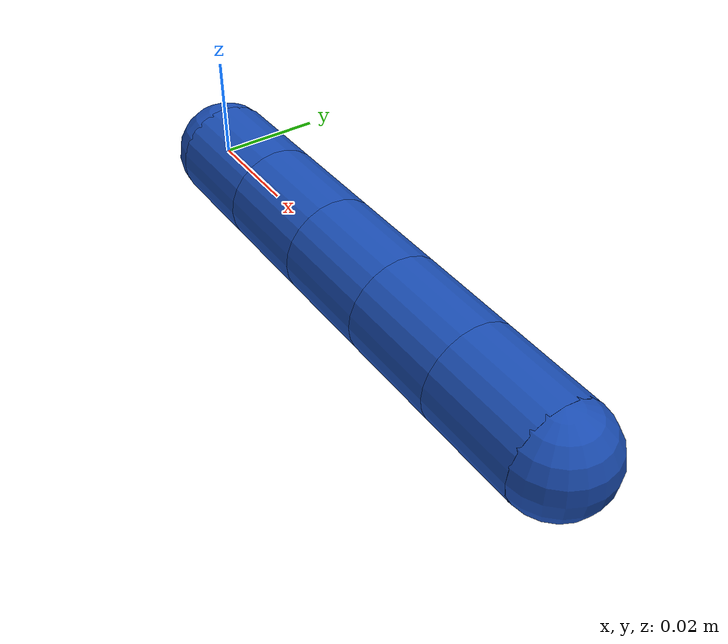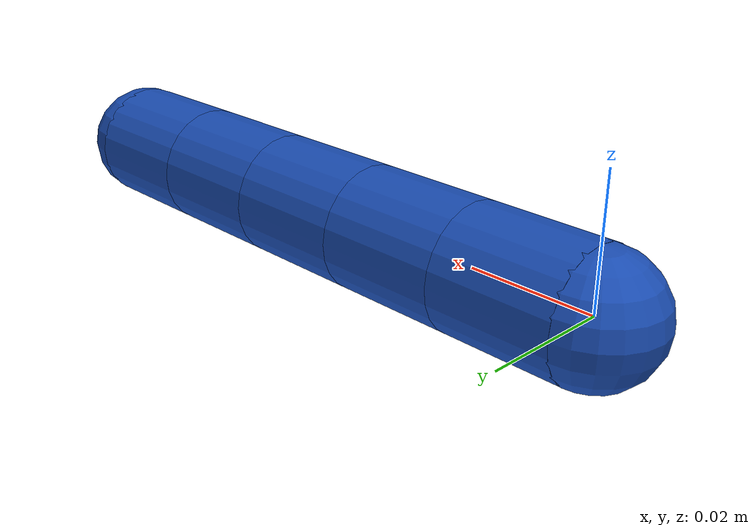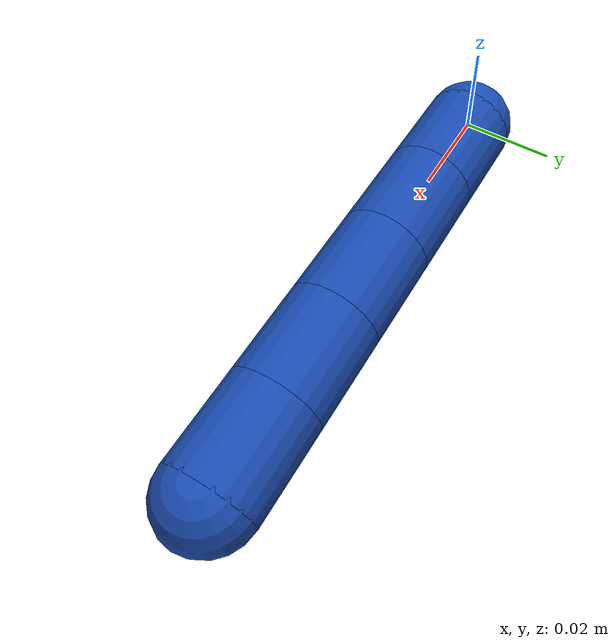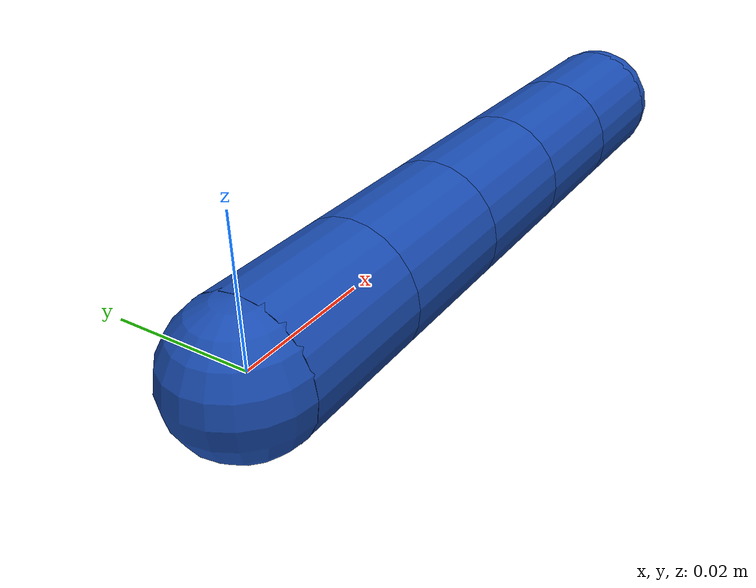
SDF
<?xml version="1.0" ?>
<sdf version="1.6">
  <world name="world">
    <model name="submarine">
      <pose>0 0 0 0 0 0</pose>

      <link name="link_body_0">
        <pose>0.00 0.0 0.0 0 0 0</pose>
        <inertial>
          <!-- CoM at geometric centre of segment -->
          <pose>0.01 0.0 0.0 0.0 0.0 0.0</pose>
          <mass>6.2832e-3</mass>
          <inertia>
            <ixx>3.14159e-7</ixx>
            <ixy>0</ixy>
            <ixz>0</ixz>
            <iyy>3.6652e-7</iyy>
            <iyz>0</iyz>
            <izz>3.6652e-7</izz>
          </inertia>
        </inertial>
        <collision name="link_body_0_collision">
          <!-- cylinder centred at (0.01, 0, 0), axis along x -->
          <pose>0.01 0.0 0.0 0 1.5707963 0</pose>
          <geometry>
            <cylinder>
              <radius>0.01</radius>
              <length>0.02</length>
            </cylinder>
          </geometry>
        </collision>
        <visual name="link_body_0_visual">
          <pose>0.01 0.0 0.0 0 1.5707963 0</pose>
          <geometry>
            <cylinder>
              <radius>0.01</radius>
              <length>0.02</length>
            </cylinder>
          </geometry>
          <material>
            <ambient>0.1 0.3 0.7 1.0</ambient>
            <diffuse>0.1 0.3 0.7 1.0</diffuse>
            <specular>0.5 0.5 0.8 1.0</specular>
            <emissive>0.0 0.0 0.0 1.0</emissive>
          </material>
        </visual>
        <!-- Hemispherical nose cap at x=0 -->
        <visual name="link_body_0_nose_visual">
          <pose>0.0 0.0 0.0 0 0 0</pose>
          <geometry>
            <sphere>
              <radius>0.01</radius>
            </sphere>
          </geometry>
          <material>
            <ambient>0.1 0.3 0.7 1.0</ambient>
            <diffuse>0.1 0.3 0.7 1.0</diffuse>
            <specular>0.5 0.5 0.8 1.0</specular>
            <emissive>0.0 0.0 0.0 1.0</emissive>
          </material>
        </visual>
      </link>

      <link name="link_body_1">
        <pose>0.02 0.0 0.0 0 0 0</pose>
        <inertial>
          <pose>0.01 0.0 0.0 0.0 0.0 0.0</pose>
          <mass>6.2832e-3</mass>
          <inertia>
            <ixx>3.14159e-7</ixx>
            <ixy>0</ixy>
            <ixz>0</ixz>
            <iyy>3.6652e-7</iyy>
            <iyz>0</iyz>
            <izz>3.6652e-7</izz>
          </inertia>
        </inertial>
        <collision name="link_body_1_collision">
          <pose>0.01 0.0 0.0 0 1.5707963 0</pose>
          <geometry>
            <cylinder>
              <radius>0.01</radius>
              <length>0.02</length>
            </cylinder>
          </geometry>
        </collision>
        <visual name="link_body_1_visual">
          <pose>0.01 0.0 0.0 0 1.5707963 0</pose>
          <geometry>
            <cylinder>
              <radius>0.01</radius>
              <length>0.02</length>
            </cylinder>
          </geometry>
          <material>
            <ambient>0.1 0.3 0.7 1.0</ambient>
            <diffuse>0.1 0.3 0.7 1.0</diffuse>
            <specular>0.5 0.5 0.8 1.0</specular>
            <emissive>0.0 0.0 0.0 1.0</emissive>
          </material>
        </visual>
      </link>

      <link name="link_body_2">
        <pose>0.04 0.0 0.0 0 0 0</pose>
        <inertial>
          <pose>0.01 0.0 0.0 0.0 0.0 0.0</pose>
          <mass>6.2832e-3</mass>
          <inertia>
            <ixx>3.14159e-7</ixx>
            <ixy>0</ixy>
            <ixz>0</ixz>
            <iyy>3.6652e-7</iyy>
            <iyz>0</iyz>
            <izz>3.6652e-7</izz>
          </inertia>
        </inertial>
        <collision name="link_body_2_collision">
          <pose>0.01 0.0 0.0 0 1.5707963 0</pose>
          <geometry>
            <cylinder>
              <radius>0.01</radius>
              <length>0.02</length>
            </cylinder>
          </geometry>
        </collision>
        <visual name="link_body_2_visual">
          <pose>0.01 0.0 0.0 0 1.5707963 0</pose>
          <geometry>
            <cylinder>
              <radius>0.01</radius>
              <length>0.02</length>
            </cylinder>
          </geometry>
          <material>
            <ambient>0.1 0.3 0.7 1.0</ambient>
            <diffuse>0.1 0.3 0.7 1.0</diffuse>
            <specular>0.5 0.5 0.8 1.0</specular>
            <emissive>0.0 0.0 0.0 1.0</emissive>
          </material>
        </visual>
      </link>

      <link name="link_body_3">
        <pose>0.06 0.0 0.0 0 0 0</pose>
        <inertial>
          <pose>0.01 0.0 0.0 0.0 0.0 0.0</pose>
          <mass>6.2832e-3</mass>
          <inertia>
            <ixx>3.14159e-7</ixx>
            <ixy>0</ixy>
            <ixz>0</ixz>
            <iyy>3.6652e-7</iyy>
            <iyz>0</iyz>
            <izz>3.6652e-7</izz>
          </inertia>
        </inertial>
        <collision name="link_body_3_collision">
          <pose>0.01 0.0 0.0 0 1.5707963 0</pose>
          <geometry>
            <cylinder>
              <radius>0.01</radius>
              <length>0.02</length>
            </cylinder>
          </geometry>
        </collision>
        <visual name="link_body_3_visual">
          <pose>0.01 0.0 0.0 0 1.5707963 0</pose>
          <geometry>
            <cylinder>
              <radius>0.01</radius>
              <length>0.02</length>
            </cylinder>
          </geometry>
          <material>
            <ambient>0.1 0.3 0.7 1.0</ambient>
            <diffuse>0.1 0.3 0.7 1.0</diffuse>
            <specular>0.5 0.5 0.8 1.0</specular>
            <emissive>0.0 0.0 0.0 1.0</emissive>
          </material>
        </visual>
      </link>

      <link name="link_body_4">
        <pose>0.08 0.0 0.0 0 0 0</pose>
        <inertial>
          <pose>0.01 0.0 0.0 0.0 0.0 0.0</pose>
          <mass>6.2832e-3</mass>
          <inertia>
            <ixx>3.14159e-7</ixx>
            <ixy>0</ixy>
            <ixz>0</ixz>
            <iyy>3.6652e-7</iyy>
            <iyz>0</iyz>
            <izz>3.6652e-7</izz>
          </inertia>
        </inertial>
        <collision name="link_body_4_collision">
          <pose>0.01 0.0 0.0 0 1.5707963 0</pose>
          <geometry>
            <cylinder>
              <radius>0.01</radius>
              <length>0.02</length>
            </cylinder>
          </geometry>
        </collision>
        <visual name="link_body_4_visual">
          <pose>0.01 0.0 0.0 0 1.5707963 0</pose>
          <geometry>
            <cylinder>
              <radius>0.01</radius>
              <length>0.02</length>
            </cylinder>
          </geometry>
          <material>
            <ambient>0.1 0.3 0.7 1.0</ambient>
            <diffuse>0.1 0.3 0.7 1.0</diffuse>
            <specular>0.5 0.5 0.8 1.0</specular>
            <emissive>0.0 0.0 0.0 1.0</emissive>
          </material>
        </visual>
        <!-- Hemispherical tail cap at end of last segment (x=0.02 in link frame) -->
        <visual name="link_body_4_tail_visual">
          <pose>0.02 0.0 0.0 0 0 0</pose>
          <geometry>
            <sphere>
              <radius>0.01</radius>
            </sphere>
          </geometry>
          <material>
            <ambient>0.1 0.3 0.7 1.0</ambient>
            <diffuse>0.1 0.3 0.7 1.0</diffuse>
            <specular>0.5 0.5 0.8 1.0</specular>
            <emissive>0.0 0.0 0.0 1.0</emissive>
          </material>
        </visual>
      </link>

      <joint name="joint_body_0" type="revolute">
        <parent>link_body_0</parent>
        <child>link_body_1</child>
        <pose>0 0 0 0 0 0</pose>
        <axis>
          <xyz>0 0 1</xyz>
          <limit>
            <lower>-1.5707963267948966</lower>
            <upper>1.5707963267948966</upper>
            <effort>100</effort>
            <velocity>100</velocity>
          </limit>
        </axis>
      </joint>

      <joint name="joint_body_1" type="revolute">
        <parent>link_body_1</parent>
        <child>link_body_2</child>
        <pose>0 0 0 0 0 0</pose>
        <axis>
          <xyz>0 0 1</xyz>
          <limit>
            <lower>-1.5707963267948966</lower>
            <upper>1.5707963267948966</upper>
            <effort>100</effort>
            <velocity>100</velocity>
          </limit>
        </axis>
      </joint>

      <joint name="joint_body_2" type="revolute">
        <parent>link_body_2</parent>
        <child>link_body_3</child>
        <pose>0 0 0 0 0 0</pose>
        <axis>
          <xyz>0 0 1</xyz>
          <limit>
            <lower>-1.5707963267948966</lower>
            <upper>1.5707963267948966</upper>
            <effort>100</effort>
            <velocity>100</velocity>
          </limit>
        </axis>
      </joint>

      <joint name="joint_body_3" type="revolute">
        <parent>link_body_3</parent>
        <child>link_body_4</child>
        <pose>0 0 0 0 0 0</pose>
        <axis>
          <xyz>0 0 1</xyz>
          <limit>
            <lower>-1.5707963267948966</lower>
            <upper>1.5707963267948966</upper>
            <effort>100</effort>
            <velocity>100</velocity>
          </limit>
        </axis>
      </joint>

    </model>
  </world>
</sdf>
